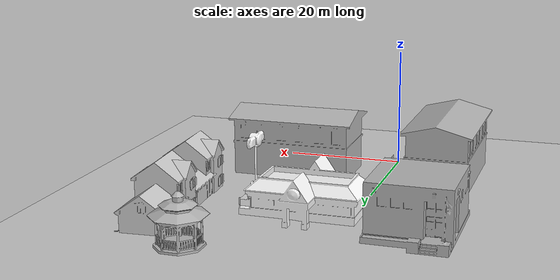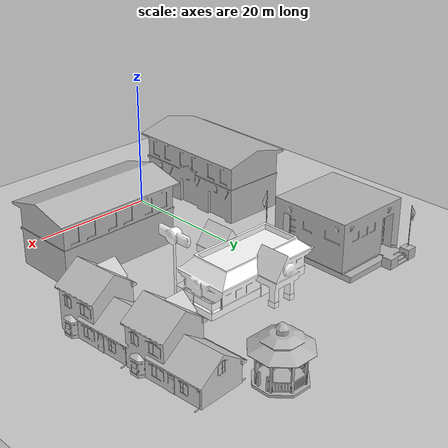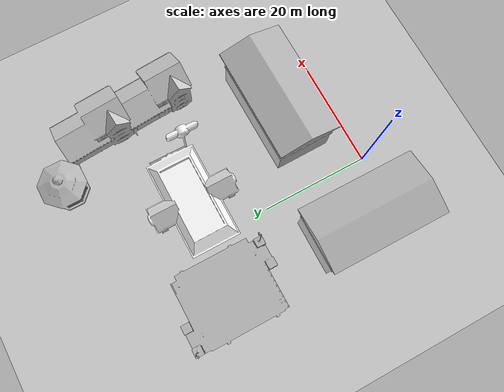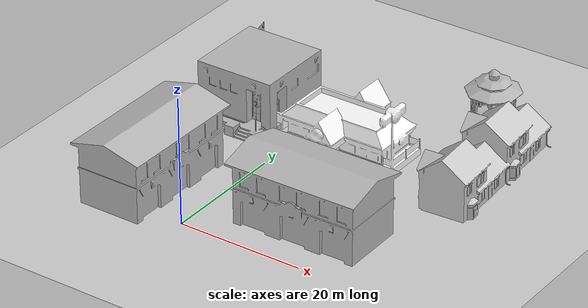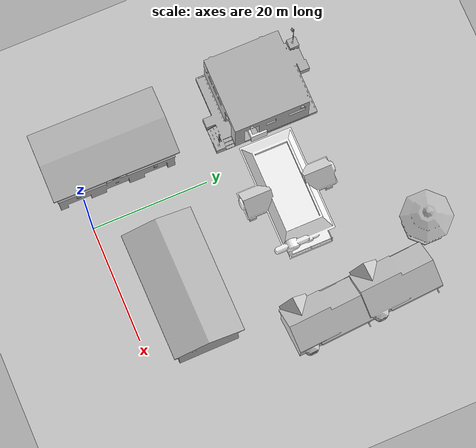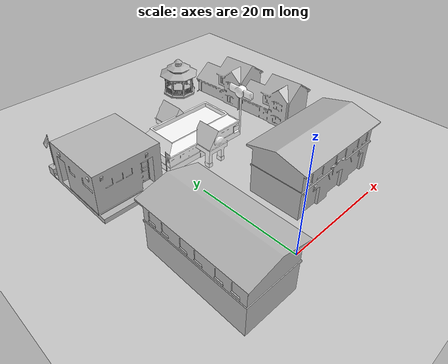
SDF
<sdf version="1.6">
 <world name="default">
  <light name="sun" type="directional">
   <pose>0 0 10 0 -0 0</pose>
   <diffuse>0.8 0.8 0.8 1</diffuse>
   <specular>0.2 0.2 0.2 1</specular>
   <attenuation>
    <range>1000</range>
    <constant>0.9</constant>
    <linear>0.01</linear>
    <quadratic>0.001</quadratic>
   </attenuation>
   <direction>-0.5 0.1 -0.9</direction>
  </light>
  <model name="ground_plane">
   <static>1</static>
   <link name="link">
    <collision name="collision">
     <geometry><plane><normal>0 0 1</normal><size>100 100</size></plane></geometry>
     <surface><friction><ode><mu>100</mu><mu2>50</mu2></ode></friction></surface>
    </collision>
    <visual name="visual">
     <cast_shadows>0</cast_shadows>
     <geometry><plane><normal>0 0 1</normal><size>100 100</size></plane></geometry>
     <material>
      <script><uri>file://media/materials/scripts/gazebo.material</uri><name>Gazebo/Grey</name></script>
     </material>
    </visual>
   </link>
  </model>
  <gravity>0 0 -9.8</gravity>
  <magnetic_field>6e-06 2.3e-05 -4.2e-05</magnetic_field>
  <atmosphere type="adiabatic"/>
  <physics name="default_physics" default="0" type="ode">
   <max_step_size>0.001</max_step_size>
   <real_time_factor>1</real_time_factor>
   <real_time_update_rate>1000</real_time_update_rate>
  </physics>
  <scene><ambient>0.4 0.4 0.4 1</ambient><background>0.7 0.7 0.7 1</background><shadows>1</shadows></scene>
  <audio><device>default</device></audio>
  <spherical_coordinates>
   <surface_model>EARTH_WGS84</surface_model>
   <latitude_deg>0</latitude_deg>
   <longitude_deg>0</longitude_deg>
   <elevation>0</elevation>
   <heading_deg>0</heading_deg>
  </spherical_coordinates>
  <model name="police_station">
   <static>1</static>
   <link name="link">
    <collision name="collision_main">
     <pose>0 0 4.28998 0 -0 0</pose>
     <geometry><box><size>13.037 13.037 8.57995</size></box></geometry>
    </collision>
    <collision name="collision_landing">
     <pose>0 0 0.464086 0 -0 0</pose>
     <geometry><box><size>13.037 16.2446 0.928173</size></box></geometry>
    </collision>
    <visual name="visual">
     <geometry><mesh><uri>model://police_station/meshes/police_station.dae</uri></mesh></geometry>
    </visual>
   </link>
   <pose>-10.3088 33.1503 0 0 -0 0</pose>
  </model>
  <model name="gazebo">
   <static>1</static>
   <link name="link">
    <collision name="collision">
     <geometry><mesh><scale>3 3 2.5</scale><uri>model://gazebo/meshes/gazebo.dae</uri></mesh></geometry>
    </collision>
    <visual name="visual">
     <geometry><mesh><scale>3 3 2.5</scale><uri>model://gazebo/meshes/gazebo.dae</uri></mesh></geometry>
    </visual>
   </link>
   <pose>20.0225 49.8552 0 0 -0 0</pose>
  </model>
  <model name="Fast Food">
   <static>1</static>
   <link name="link">
    <pose>0 0 3.15931 0 -0 0</pose>
    <collision name="collision">
     <geometry><mesh><scale>3 3 2</scale><uri>model://fast_food/meshes/fast_food.dae</uri></mesh></geometry>
    </collision>
    <visual name="visual">
     <geometry><mesh><scale>3 3 2</scale><uri>model://fast_food/meshes/fast_food.dae</uri></mesh></geometry>
     <material>
      <script>
       <uri>model://fast_food/materials/scripts</uri>
       <uri>model://fast_food/materials/textures</uri>
       <name>FastFood/Diffuse</name>
      </script>
      <shader type="normal_map_tangent_space"><normal_map>FastFood_Normal.png</normal_map></shader>
     </material>
    </visual>
   </link>
   <pose>6.88691 31.1742 0 0 -0 0</pose>
  </model>
  <model name="fire_station">
   <static>1</static>
   <link name="link">
    <collision name="main">
     <pose>0 -0.135 5 0 -0 0</pose>
     <geometry><box><size>19.98 9.68 10</size></box></geometry>
    </collision>
    <collision name="front_top">
     <pose>0 4.957 7 0 -0 0</pose>
     <geometry><box><size>20 0.515 6</size></box></geometry>
    </collision>
    <collision name="column_0">
     <pose>9.333 4.957 2 0 -0 0</pose>
     <geometry><box><size>1.315 0.515 4</size></box></geometry>
    </collision>
    <collision name="column_1">
     <pose>3.33 4.957 2 0 -0 0</pose>
     <geometry><box><size>2.63 0.515 4</size></box></geometry>
    </collision>
    <collision name="column_2">
     <pose>-3.33 4.957 2 0 -0 0</pose>
     <geometry><box><size>2.63 0.515 4</size></box></geometry>
    </collision>
    <collision name="column_3">
     <pose>-9.333 4.957 2 0 -0 0</pose>
     <geometry><box><size>1.315 0.515 4</size></box></geometry>
    </collision>
    <collision name="roof_back">
     <pose>0 -2.742 10.467 0.25 -0 0</pose>
     <geometry><box><size>21.47 6.12 0.28</size></box></geometry>
    </collision>
    <collision name="roof_front">
     <pose>0 3.12 10.467 -0.25 0 0</pose>
     <geometry><box><size>21.47 6.12 0.28</size></box></geometry>
    </collision>
    <collision name="roof_base">
     <pose>0 0.188 9.705 0 -0 0</pose>
     <geometry><box><size>21.47 11.86 0.28</size></box></geometry>
    </collision>
    <collision name="roof_filling_0">
     <pose>0 0.188 9.985 0 -0 0</pose>
     <geometry><box><size>21.47 9.53 0.28</size></box></geometry>
    </collision>
    <collision name="roof_filling_1">
     <pose>0 0.188 10.14 0 -0 0</pose>
     <geometry><box><size>21.47 8.41 0.28</size></box></geometry>
    </collision>
    <collision name="roof_filling_2">
     <pose>0 0.188 10.42 0 -0 0</pose>
     <geometry><box><size>21.47 6.25 0.28</size></box></geometry>
    </collision>
    <collision name="roof_filling_3">
     <pose>0 0.188 10.7 0 -0 0</pose>
     <geometry><box><size>21.47 4.05 0.28</size></box></geometry>
    </collision>
    <collision name="roof_filling_4">
     <pose>0 0.188 10.98 0 -0 0</pose>
     <geometry><box><size>21.47 1.83 0.28</size></box></geometry>
    </collision>
    <visual name="visual">
     <geometry><mesh><uri>model://fire_station/meshes/fire_station.dae</uri></mesh></geometry>
    </visual>
   </link>
   <pose>-10.0312 6.42416 0 0 0 -1.57781</pose>
  </model>
  <model name="House 3">
   <static>1</static>
   <link name="link">
    <collision name="collision">
     <geometry><mesh><uri>model://house_3/meshes/house_3.dae</uri><scale>1.5 1.5 1.5</scale></mesh></geometry>
    </collision>
    <visual name="visual">
     <geometry><mesh><uri>model://house_3/meshes/house_3.dae</uri><scale>1.5 1.5 1.5</scale></mesh></geometry>
     <material>
      <script>
       <uri>model://house_3/materials/scripts</uri>
       <uri>model://house_3/materials/textures</uri>
       <uri>model://house_1/materials/textures</uri>
       <name>House_3/Diffuse</name>
      </script>
      <shader type="normal_map_tangent_space">
       <normal_map>model://house_1/materials/textures/House_1_Normal.png</normal_map>
      </shader>
     </material>
    </visual>
   </link>
   <pose>28.2982 29.1171 0 0 -0 1.63519</pose>
  </model>
  <model name="House 3_clone">
   <static>1</static>
   <link name="link">
    <collision name="collision">
     <geometry><mesh><uri>model://house_3/meshes/house_3.dae</uri><scale>1.5 1.5 1.5</scale></mesh></geometry>
    </collision>
    <visual name="visual">
     <geometry><mesh><uri>model://house_3/meshes/house_3.dae</uri><scale>1.5 1.5 1.5</scale></mesh></geometry>
     <material>
      <script>
       <uri>model://house_3/materials/scripts</uri>
       <uri>model://house_3/materials/textures</uri>
       <uri>model://house_1/materials/textures</uri>
       <name>House_3/Diffuse</name>
      </script>
      <shader type="normal_map_tangent_space">
       <normal_map>model://house_1/materials/textures/House_1_Normal.png</normal_map>
      </shader>
     </material>
    </visual>
   </link>
   <pose>27.5833 41.5337 0 0 -0 1.63519</pose>
  </model>
  <model name="fire_station_clone">
   <static>1</static>
   <link name="link">
    <collision name="main">
     <pose>0 -0.135 5 0 -0 0</pose>
     <geometry><box><size>19.98 9.68 10</size></box></geometry>
    </collision>
    <collision name="front_top">
     <pose>0 4.957 7 0 -0 0</pose>
     <geometry><box><size>20 0.515 6</size></box></geometry>
    </collision>
    <collision name="column_0">
     <pose>9.333 4.957 2 0 -0 0</pose>
     <geometry><box><size>1.315 0.515 4</size></box></geometry>
    </collision>
    <collision name="column_1">
     <pose>3.33 4.957 2 0 -0 0</pose>
     <geometry><box><size>2.63 0.515 4</size></box></geometry>
    </collision>
    <collision name="column_2">
     <pose>-3.33 4.957 2 0 -0 0</pose>
     <geometry><box><size>2.63 0.515 4</size></box></geometry>
    </collision>
    <collision name="column_3">
     <pose>-9.333 4.957 2 0 -0 0</pose>
     <geometry><box><size>1.315 0.515 4</size></box></geometry>
    </collision>
    <collision name="roof_back">
     <pose>0 -2.742 10.467 0.25 -0 0</pose>
     <geometry><box><size>21.47 6.12 0.28</size></box></geometry>
    </collision>
    <collision name="roof_front">
     <pose>0 3.12 10.467 -0.25 0 0</pose>
     <geometry><box><size>21.47 6.12 0.28</size></box></geometry>
    </collision>
    <collision name="roof_base">
     <pose>0 0.188 9.705 0 -0 0</pose>
     <geometry><box><size>21.47 11.86 0.28</size></box></geometry>
    </collision>
    <collision name="roof_filling_0">
     <pose>0 0.188 9.985 0 -0 0</pose>
     <geometry><box><size>21.47 9.53 0.28</size></box></geometry>
    </collision>
    <collision name="roof_filling_1">
     <pose>0 0.188 10.14 0 -0 0</pose>
     <geometry><box><size>21.47 8.41 0.28</size></box></geometry>
    </collision>
    <collision name="roof_filling_2">
     <pose>0 0.188 10.42 0 -0 0</pose>
     <geometry><box><size>21.47 6.25 0.28</size></box></geometry>
    </collision>
    <collision name="roof_filling_3">
     <pose>0 0.188 10.7 0 -0 0</pose>
     <geometry><box><size>21.47 4.05 0.28</size></box></geometry>
    </collision>
    <collision name="roof_filling_4">
     <pose>0 0.188 10.98 0 -0 0</pose>
     <geometry><box><size>21.47 1.83 0.28</size></box></geometry>
    </collision>
    <visual name="visual">
     <geometry><mesh><uri>model://fire_station/meshes/fire_station.dae</uri></mesh></geometry>
    </visual>
   </link>
   <pose>15.7772 9.60131 0 0 0 -3.13257</pose>
  </model>
 </world>
</sdf>
